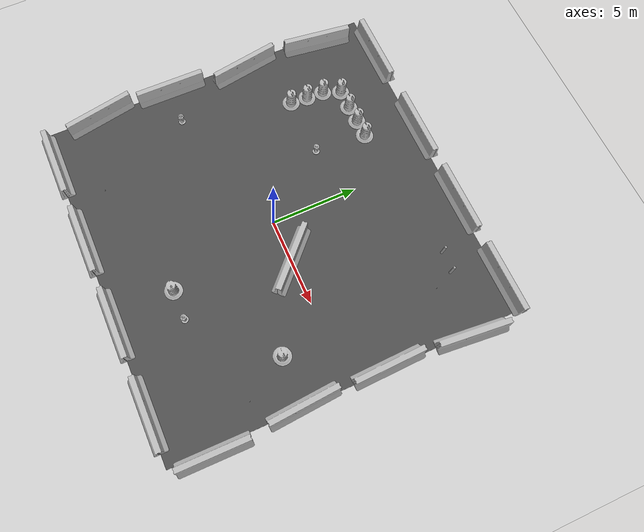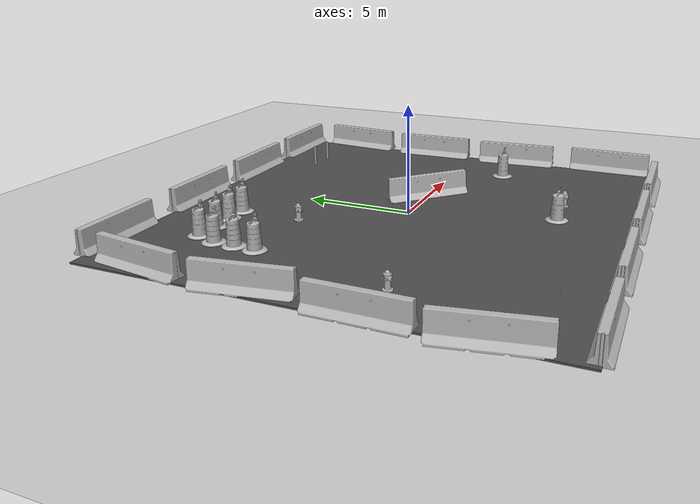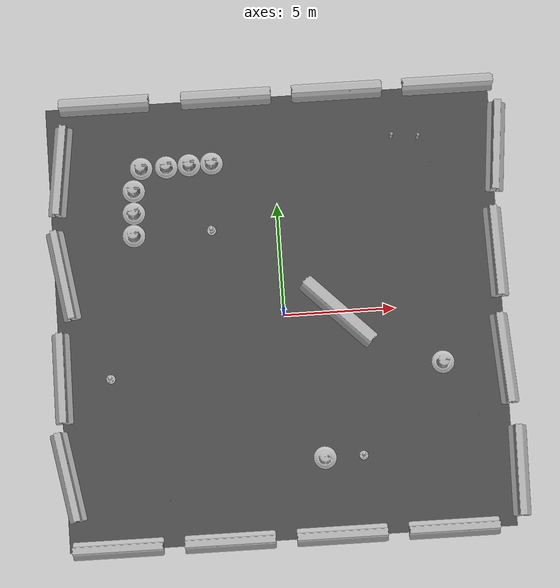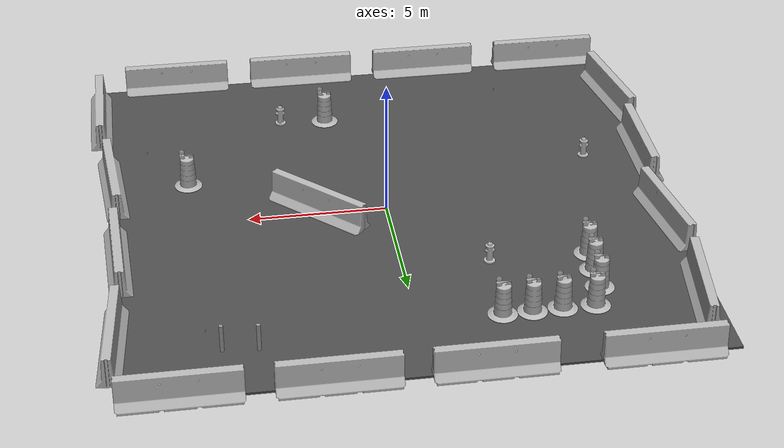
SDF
<sdf version="1.6">
 <world name="default">
  <light name="sun" type="directional">
   <pose>0 0 10 0 -0 0</pose>
   <diffuse>0.8 0.8 0.8 1</diffuse>
   <specular>0.2 0.2 0.2 1</specular>
   <attenuation>
    <range>1000</range>
    <constant>0.9</constant>
    <linear>0.01</linear>
    <quadratic>0.001</quadratic>
   </attenuation>
   <direction>-0.5 0.1 -0.9</direction>
  </light>
  <model name="ground_plane">
   <static>1</static>
   <link name="link">
    <collision name="collision">
     <geometry><plane><normal>0 0 1</normal><size>100 100</size></plane></geometry>
     <surface><friction><ode><mu>100</mu><mu2>50</mu2></ode></friction></surface>
    </collision>
    <visual name="visual">
     <cast_shadows>0</cast_shadows>
     <geometry><plane><normal>0 0 1</normal><size>100 100</size></plane></geometry>
     <material>
      <script><uri>file://media/materials/scripts/gazebo.material</uri><name>Gazebo/Grey</name></script>
     </material>
    </visual>
    <velocity_decay><linear>0</linear><angular>0</angular></velocity_decay>
   </link>
  </model>
  <physics name="default_physics" default="0" type="ode">
   <max_step_size>0.01</max_step_size>
   <real_time_factor>1</real_time_factor>
   <real_time_update_rate>100</real_time_update_rate>
  </physics>
  <scene><ambient>0.4 0.4 0.4 1</ambient><background>0.7 0.7 0.7 1</background><shadows>1</shadows></scene>
  <model name="jersey_barrier">
   <static>1</static>
   <link name="link">
    <visual name="visual">
     <geometry>
      <mesh><uri>model://jersey_barrier/meshes/jersey_barrier.dae</uri><scale>1 1 1</scale></mesh>
     </geometry>
    </visual>
    <collision name="upright">
     <pose>0 0 0.5715 0 -0 0</pose>
     <geometry><box><size>4.06542 0.3063 1.143</size></box></geometry>
    </collision>
    <collision name="base">
     <pose>0 0 0.032258 0 -0 0</pose>
     <geometry><box><size>4.06542 0.8107 0.064516</size></box></geometry>
    </collision>
    <collision name="base2">
     <pose>0 0 0.1 0 -0 0</pose>
     <geometry><box><size>4.06542 0.65 0.1</size></box></geometry>
    </collision>
    <collision name="base3">
     <pose>0 0 0.2 0 -0 0</pose>
     <geometry><box><size>4.06542 0.5 0.1</size></box></geometry>
    </collision>
    <collision name="left-angle">
     <pose>0 -0.224 0.2401 0.9 -0 0</pose>
     <geometry><box><size>4.06542 0.5 0.064516</size></box></geometry>
    </collision>
    <collision name="right-angle">
     <pose>0 0.224 0.2401 -0.9 0 0</pose>
     <geometry><box><size>4.06542 0.5 0.064516</size></box></geometry>
    </collision>
    <velocity_decay><linear>0</linear><angular>0</angular></velocity_decay>
   </link>
   <pose>-8 -10 0 0 -0 0</pose>
  </model>
  <model name="jersey_barrier_0">
   <static>1</static>
   <link name="link">
    <visual name="visual">
     <geometry>
      <mesh><uri>model://jersey_barrier/meshes/jersey_barrier.dae</uri><scale>1 1 1</scale></mesh>
     </geometry>
    </visual>
    <collision name="upright">
     <pose>0 0 0.5715 0 -0 0</pose>
     <geometry><box><size>4.06542 0.3063 1.143</size></box></geometry>
    </collision>
    <collision name="base">
     <pose>0 0 0.032258 0 -0 0</pose>
     <geometry><box><size>4.06542 0.8107 0.064516</size></box></geometry>
    </collision>
    <collision name="base2">
     <pose>0 0 0.1 0 -0 0</pose>
     <geometry><box><size>4.06542 0.65 0.1</size></box></geometry>
    </collision>
    <collision name="base3">
     <pose>0 0 0.2 0 -0 0</pose>
     <geometry><box><size>4.06542 0.5 0.1</size></box></geometry>
    </collision>
    <collision name="left-angle">
     <pose>0 -0.224 0.2401 0.9 -0 0</pose>
     <geometry><box><size>4.06542 0.5 0.064516</size></box></geometry>
    </collision>
    <collision name="right-angle">
     <pose>0 0.224 0.2401 -0.9 0 0</pose>
     <geometry><box><size>4.06542 0.5 0.064516</size></box></geometry>
    </collision>
    <velocity_decay><linear>0</linear><angular>0</angular></velocity_decay>
   </link>
   <pose>-3 -10 0 0 -0 0</pose>
  </model>
  <model name="jersey_barrier_1">
   <static>1</static>
   <link name="link">
    <visual name="visual">
     <geometry>
      <mesh><uri>model://jersey_barrier/meshes/jersey_barrier.dae</uri><scale>1 1 1</scale></mesh>
     </geometry>
    </visual>
    <collision name="upright">
     <pose>0 0 0.5715 0 -0 0</pose>
     <geometry><box><size>4.06542 0.3063 1.143</size></box></geometry>
    </collision>
    <collision name="base">
     <pose>0 0 0.032258 0 -0 0</pose>
     <geometry><box><size>4.06542 0.8107 0.064516</size></box></geometry>
    </collision>
    <collision name="base2">
     <pose>0 0 0.1 0 -0 0</pose>
     <geometry><box><size>4.06542 0.65 0.1</size></box></geometry>
    </collision>
    <collision name="base3">
     <pose>0 0 0.2 0 -0 0</pose>
     <geometry><box><size>4.06542 0.5 0.1</size></box></geometry>
    </collision>
    <collision name="left-angle">
     <pose>0 -0.224 0.2401 0.9 -0 0</pose>
     <geometry><box><size>4.06542 0.5 0.064516</size></box></geometry>
    </collision>
    <collision name="right-angle">
     <pose>0 0.224 0.2401 -0.9 0 0</pose>
     <geometry><box><size>4.06542 0.5 0.064516</size></box></geometry>
    </collision>
    <velocity_decay><linear>0</linear><angular>0</angular></velocity_decay>
   </link>
   <pose>2 -10 0 0 -0 0</pose>
  </model>
  <model name="jersey_barrier_2">
   <static>1</static>
   <link name="link">
    <visual name="visual">
     <geometry>
      <mesh><uri>model://jersey_barrier/meshes/jersey_barrier.dae</uri><scale>1 1 1</scale></mesh>
     </geometry>
    </visual>
    <collision name="upright">
     <pose>0 0 0.5715 0 -0 0</pose>
     <geometry><box><size>4.06542 0.3063 1.143</size></box></geometry>
    </collision>
    <collision name="base">
     <pose>0 0 0.032258 0 -0 0</pose>
     <geometry><box><size>4.06542 0.8107 0.064516</size></box></geometry>
    </collision>
    <collision name="base2">
     <pose>0 0 0.1 0 -0 0</pose>
     <geometry><box><size>4.06542 0.65 0.1</size></box></geometry>
    </collision>
    <collision name="base3">
     <pose>0 0 0.2 0 -0 0</pose>
     <geometry><box><size>4.06542 0.5 0.1</size></box></geometry>
    </collision>
    <collision name="left-angle">
     <pose>0 -0.224 0.2401 0.9 -0 0</pose>
     <geometry><box><size>4.06542 0.5 0.064516</size></box></geometry>
    </collision>
    <collision name="right-angle">
     <pose>0 0.224 0.2401 -0.9 0 0</pose>
     <geometry><box><size>4.06542 0.5 0.064516</size></box></geometry>
    </collision>
    <velocity_decay><linear>0</linear><angular>0</angular></velocity_decay>
   </link>
   <pose>7 -10 0 0 -0 0</pose>
  </model>
  <model name="jersey_barrier_3">
   <static>1</static>
   <link name="link">
    <visual name="visual">
     <geometry>
      <mesh><uri>model://jersey_barrier/meshes/jersey_barrier.dae</uri><scale>1 1 1</scale></mesh>
     </geometry>
    </visual>
    <collision name="upright">
     <pose>0 0 0.5715 0 -0 0</pose>
     <geometry><box><size>4.06542 0.3063 1.143</size></box></geometry>
    </collision>
    <collision name="base">
     <pose>0 0 0.032258 0 -0 0</pose>
     <geometry><box><size>4.06542 0.8107 0.064516</size></box></geometry>
    </collision>
    <collision name="base2">
     <pose>0 0 0.1 0 -0 0</pose>
     <geometry><box><size>4.06542 0.65 0.1</size></box></geometry>
    </collision>
    <collision name="base3">
     <pose>0 0 0.2 0 -0 0</pose>
     <geometry><box><size>4.06542 0.5 0.1</size></box></geometry>
    </collision>
    <collision name="left-angle">
     <pose>0 -0.224 0.2401 0.9 -0 0</pose>
     <geometry><box><size>4.06542 0.5 0.064516</size></box></geometry>
    </collision>
    <collision name="right-angle">
     <pose>0 0.224 0.2401 -0.9 0 0</pose>
     <geometry><box><size>4.06542 0.5 0.064516</size></box></geometry>
    </collision>
    <velocity_decay><linear>0</linear><angular>0</angular></velocity_decay>
   </link>
   <pose>-7.50675 10 0 0 -0 0</pose>
  </model>
  <model name="jersey_barrier_4">
   <static>1</static>
   <link name="link">
    <visual name="visual">
     <geometry>
      <mesh><uri>model://jersey_barrier/meshes/jersey_barrier.dae</uri><scale>1 1 1</scale></mesh>
     </geometry>
    </visual>
    <collision name="upright">
     <pose>0 0 0.5715 0 -0 0</pose>
     <geometry><box><size>4.06542 0.3063 1.143</size></box></geometry>
    </collision>
    <collision name="base">
     <pose>0 0 0.032258 0 -0 0</pose>
     <geometry><box><size>4.06542 0.8107 0.064516</size></box></geometry>
    </collision>
    <collision name="base2">
     <pose>0 0 0.1 0 -0 0</pose>
     <geometry><box><size>4.06542 0.65 0.1</size></box></geometry>
    </collision>
    <collision name="base3">
     <pose>0 0 0.2 0 -0 0</pose>
     <geometry><box><size>4.06542 0.5 0.1</size></box></geometry>
    </collision>
    <collision name="left-angle">
     <pose>0 -0.224 0.2401 0.9 -0 0</pose>
     <geometry><box><size>4.06542 0.5 0.064516</size></box></geometry>
    </collision>
    <collision name="right-angle">
     <pose>0 0.224 0.2401 -0.9 0 0</pose>
     <geometry><box><size>4.06542 0.5 0.064516</size></box></geometry>
    </collision>
    <velocity_decay><linear>0</linear><angular>0</angular></velocity_decay>
   </link>
   <pose>-2 10 0 0 -0 0</pose>
  </model>
  <model name="jersey_barrier_5">
   <static>1</static>
   <link name="link">
    <visual name="visual">
     <geometry>
      <mesh><uri>model://jersey_barrier/meshes/jersey_barrier.dae</uri><scale>1 1 1</scale></mesh>
     </geometry>
    </visual>
    <collision name="upright">
     <pose>0 0 0.5715 0 -0 0</pose>
     <geometry><box><size>4.06542 0.3063 1.143</size></box></geometry>
    </collision>
    <collision name="base">
     <pose>0 0 0.032258 0 -0 0</pose>
     <geometry><box><size>4.06542 0.8107 0.064516</size></box></geometry>
    </collision>
    <collision name="base2">
     <pose>0 0 0.1 0 -0 0</pose>
     <geometry><box><size>4.06542 0.65 0.1</size></box></geometry>
    </collision>
    <collision name="base3">
     <pose>0 0 0.2 0 -0 0</pose>
     <geometry><box><size>4.06542 0.5 0.1</size></box></geometry>
    </collision>
    <collision name="left-angle">
     <pose>0 -0.224 0.2401 0.9 -0 0</pose>
     <geometry><box><size>4.06542 0.5 0.064516</size></box></geometry>
    </collision>
    <collision name="right-angle">
     <pose>0 0.224 0.2401 -0.9 0 0</pose>
     <geometry><box><size>4.06542 0.5 0.064516</size></box></geometry>
    </collision>
    <velocity_decay><linear>0</linear><angular>0</angular></velocity_decay>
   </link>
   <pose>3 10 0 0 -0 0</pose>
  </model>
  <model name="jersey_barrier_6">
   <static>1</static>
   <link name="link">
    <visual name="visual">
     <geometry>
      <mesh><uri>model://jersey_barrier/meshes/jersey_barrier.dae</uri><scale>1 1 1</scale></mesh>
     </geometry>
    </visual>
    <collision name="upright">
     <pose>0 0 0.5715 0 -0 0</pose>
     <geometry><box><size>4.06542 0.3063 1.143</size></box></geometry>
    </collision>
    <collision name="base">
     <pose>0 0 0.032258 0 -0 0</pose>
     <geometry><box><size>4.06542 0.8107 0.064516</size></box></geometry>
    </collision>
    <collision name="base2">
     <pose>0 0 0.1 0 -0 0</pose>
     <geometry><box><size>4.06542 0.65 0.1</size></box></geometry>
    </collision>
    <collision name="base3">
     <pose>0 0 0.2 0 -0 0</pose>
     <geometry><box><size>4.06542 0.5 0.1</size></box></geometry>
    </collision>
    <collision name="left-angle">
     <pose>0 -0.224 0.2401 0.9 -0 0</pose>
     <geometry><box><size>4.06542 0.5 0.064516</size></box></geometry>
    </collision>
    <collision name="right-angle">
     <pose>0 0.224 0.2401 -0.9 0 0</pose>
     <geometry><box><size>4.06542 0.5 0.064516</size></box></geometry>
    </collision>
    <velocity_decay><linear>0</linear><angular>0</angular></velocity_decay>
   </link>
   <pose>8 10 0 0 -0 0</pose>
  </model>
  <model name="jersey_barrier_7">
   <static>1</static>
   <link name="link">
    <visual name="visual">
     <geometry>
      <mesh><uri>model://jersey_barrier/meshes/jersey_barrier.dae</uri><scale>1 1 1</scale></mesh>
     </geometry>
    </visual>
    <collision name="upright">
     <pose>0 0 0.5715 0 -0 0</pose>
     <geometry><box><size>4.06542 0.3063 1.143</size></box></geometry>
    </collision>
    <collision name="base">
     <pose>0 0 0.032258 0 -0 0</pose>
     <geometry><box><size>4.06542 0.8107 0.064516</size></box></geometry>
    </collision>
    <collision name="base2">
     <pose>0 0 0.1 0 -0 0</pose>
     <geometry><box><size>4.06542 0.65 0.1</size></box></geometry>
    </collision>
    <collision name="base3">
     <pose>0 0 0.2 0 -0 0</pose>
     <geometry><box><size>4.06542 0.5 0.1</size></box></geometry>
    </collision>
    <collision name="left-angle">
     <pose>0 -0.224 0.2401 0.9 -0 0</pose>
     <geometry><box><size>4.06542 0.5 0.064516</size></box></geometry>
    </collision>
    <collision name="right-angle">
     <pose>0 0.224 0.2401 -0.9 0 0</pose>
     <geometry><box><size>4.06542 0.5 0.064516</size></box></geometry>
    </collision>
    <velocity_decay><linear>0</linear><angular>0</angular></velocity_decay>
   </link>
   <pose>9.74902 -2.57759 0 0 -0 1.64</pose>
  </model>
  <model name="jersey_barrier_8">
   <static>1</static>
   <link name="link">
    <visual name="visual">
     <geometry>
      <mesh><uri>model://jersey_barrier/meshes/jersey_barrier.dae</uri><scale>1 1 1</scale></mesh>
     </geometry>
    </visual>
    <collision name="upright">
     <pose>0 0 0.5715 0 -0 0</pose>
     <geometry><box><size>4.06542 0.3063 1.143</size></box></geometry>
    </collision>
    <collision name="base">
     <pose>0 0 0.032258 0 -0 0</pose>
     <geometry><box><size>4.06542 0.8107 0.064516</size></box></geometry>
    </collision>
    <collision name="base2">
     <pose>0 0 0.1 0 -0 0</pose>
     <geometry><box><size>4.06542 0.65 0.1</size></box></geometry>
    </collision>
    <collision name="base3">
     <pose>0 0 0.2 0 -0 0</pose>
     <geometry><box><size>4.06542 0.5 0.1</size></box></geometry>
    </collision>
    <collision name="left-angle">
     <pose>0 -0.224 0.2401 0.9 -0 0</pose>
     <geometry><box><size>4.06542 0.5 0.064516</size></box></geometry>
    </collision>
    <collision name="right-angle">
     <pose>0 0.224 0.2401 -0.9 0 0</pose>
     <geometry><box><size>4.06542 0.5 0.064516</size></box></geometry>
    </collision>
    <velocity_decay><linear>0</linear><angular>0</angular></velocity_decay>
   </link>
   <pose>9.70141 2.24369 0 0 -0 1.6</pose>
  </model>
  <model name="jersey_barrier_9">
   <static>1</static>
   <link name="link">
    <visual name="visual">
     <geometry>
      <mesh><uri>model://jersey_barrier/meshes/jersey_barrier.dae</uri><scale>1 1 1</scale></mesh>
     </geometry>
    </visual>
    <collision name="upright">
     <pose>0 0 0.5715 0 -0 0</pose>
     <geometry><box><size>4.06542 0.3063 1.143</size></box></geometry>
    </collision>
    <collision name="base">
     <pose>0 0 0.032258 0 -0 0</pose>
     <geometry><box><size>4.06542 0.8107 0.064516</size></box></geometry>
    </collision>
    <collision name="base2">
     <pose>0 0 0.1 0 -0 0</pose>
     <geometry><box><size>4.06542 0.65 0.1</size></box></geometry>
    </collision>
    <collision name="base3">
     <pose>0 0 0.2 0 -0 0</pose>
     <geometry><box><size>4.06542 0.5 0.1</size></box></geometry>
    </collision>
    <collision name="left-angle">
     <pose>0 -0.224 0.2401 0.9 -0 0</pose>
     <geometry><box><size>4.06542 0.5 0.064516</size></box></geometry>
    </collision>
    <collision name="right-angle">
     <pose>0 0.224 0.2401 -0.9 0 0</pose>
     <geometry><box><size>4.06542 0.5 0.064516</size></box></geometry>
    </collision>
    <velocity_decay><linear>0</linear><angular>0</angular></velocity_decay>
   </link>
   <pose>-10.0607 -6.69856 0 0 0 -1.4</pose>
  </model>
  <model name="jersey_barrier_10">
   <static>1</static>
   <link name="link">
    <visual name="visual">
     <geometry>
      <mesh><uri>model://jersey_barrier/meshes/jersey_barrier.dae</uri><scale>1 1 1</scale></mesh>
     </geometry>
    </visual>
    <collision name="upright">
     <pose>0 0 0.5715 0 -0 0</pose>
     <geometry><box><size>4.06542 0.3063 1.143</size></box></geometry>
    </collision>
    <collision name="base">
     <pose>0 0 0.032258 0 -0 0</pose>
     <geometry><box><size>4.06542 0.8107 0.064516</size></box></geometry>
    </collision>
    <collision name="base2">
     <pose>0 0 0.1 0 -0 0</pose>
     <geometry><box><size>4.06542 0.65 0.1</size></box></geometry>
    </collision>
    <collision name="base3">
     <pose>0 0 0.2 0 -0 0</pose>
     <geometry><box><size>4.06542 0.5 0.1</size></box></geometry>
    </collision>
    <collision name="left-angle">
     <pose>0 -0.224 0.2401 0.9 -0 0</pose>
     <geometry><box><size>4.06542 0.5 0.064516</size></box></geometry>
    </collision>
    <collision name="right-angle">
     <pose>0 0.224 0.2401 -0.9 0 0</pose>
     <geometry><box><size>4.06542 0.5 0.064516</size></box></geometry>
    </collision>
    <velocity_decay><linear>0</linear><angular>0</angular></velocity_decay>
   </link>
   <pose>-10.0774 -2.27159 0 0 -0 1.56</pose>
  </model>
  <model name="jersey_barrier_11">
   <static>1</static>
   <link name="link">
    <visual name="visual">
     <geometry>
      <mesh><uri>model://jersey_barrier/meshes/jersey_barrier.dae</uri><scale>1 1 1</scale></mesh>
     </geometry>
    </visual>
    <collision name="upright">
     <pose>0 0 0.5715 0 -0 0</pose>
     <geometry><box><size>4.06542 0.3063 1.143</size></box></geometry>
    </collision>
    <collision name="base">
     <pose>0 0 0.032258 0 -0 0</pose>
     <geometry><box><size>4.06542 0.8107 0.064516</size></box></geometry>
    </collision>
    <collision name="base2">
     <pose>0 0 0.1 0 -0 0</pose>
     <geometry><box><size>4.06542 0.65 0.1</size></box></geometry>
    </collision>
    <collision name="base3">
     <pose>0 0 0.2 0 -0 0</pose>
     <geometry><box><size>4.06542 0.5 0.1</size></box></geometry>
    </collision>
    <collision name="left-angle">
     <pose>0 -0.224 0.2401 0.9 -0 0</pose>
     <geometry><box><size>4.06542 0.5 0.064516</size></box></geometry>
    </collision>
    <collision name="right-angle">
     <pose>0 0.224 0.2401 -0.9 0 0</pose>
     <geometry><box><size>4.06542 0.5 0.064516</size></box></geometry>
    </collision>
    <velocity_decay><linear>0</linear><angular>0</angular></velocity_decay>
   </link>
   <pose>-9.77013 2.34791 0 0 -0 1.72</pose>
  </model>
  <model name="jersey_barrier_12">
   <static>1</static>
   <link name="link">
    <visual name="visual">
     <geometry>
      <mesh><uri>model://jersey_barrier/meshes/jersey_barrier.dae</uri><scale>1 1 1</scale></mesh>
     </geometry>
    </visual>
    <collision name="upright">
     <pose>0 0 0.5715 0 -0 0</pose>
     <geometry><box><size>4.06542 0.3063 1.143</size></box></geometry>
    </collision>
    <collision name="base">
     <pose>0 0 0.032258 0 -0 0</pose>
     <geometry><box><size>4.06542 0.8107 0.064516</size></box></geometry>
    </collision>
    <collision name="base2">
     <pose>0 0 0.1 0 -0 0</pose>
     <geometry><box><size>4.06542 0.65 0.1</size></box></geometry>
    </collision>
    <collision name="base3">
     <pose>0 0 0.2 0 -0 0</pose>
     <geometry><box><size>4.06542 0.5 0.1</size></box></geometry>
    </collision>
    <collision name="left-angle">
     <pose>0 -0.224 0.2401 0.9 -0 0</pose>
     <geometry><box><size>4.06542 0.5 0.064516</size></box></geometry>
    </collision>
    <collision name="right-angle">
     <pose>0 0.224 0.2401 -0.9 0 0</pose>
     <geometry><box><size>4.06542 0.5 0.064516</size></box></geometry>
    </collision>
    <velocity_decay><linear>0</linear><angular>0</angular></velocity_decay>
   </link>
   <pose>10.0879 -7.62159 0 0 -0 1.56</pose>
  </model>
  <model name="jersey_barrier_13">
   <static>1</static>
   <link name="link">
    <visual name="visual">
     <geometry>
      <mesh><uri>model://jersey_barrier/meshes/jersey_barrier.dae</uri><scale>1 1 1</scale></mesh>
     </geometry>
    </visual>
    <collision name="upright">
     <pose>0 0 0.5715 0 -0 0</pose>
     <geometry><box><size>4.06542 0.3063 1.143</size></box></geometry>
    </collision>
    <collision name="base">
     <pose>0 0 0.032258 0 -0 0</pose>
     <geometry><box><size>4.06542 0.8107 0.064516</size></box></geometry>
    </collision>
    <collision name="base2">
     <pose>0 0 0.1 0 -0 0</pose>
     <geometry><box><size>4.06542 0.65 0.1</size></box></geometry>
    </collision>
    <collision name="base3">
     <pose>0 0 0.2 0 -0 0</pose>
     <geometry><box><size>4.06542 0.5 0.1</size></box></geometry>
    </collision>
    <collision name="left-angle">
     <pose>0 -0.224 0.2401 0.9 -0 0</pose>
     <geometry><box><size>4.06542 0.5 0.064516</size></box></geometry>
    </collision>
    <collision name="right-angle">
     <pose>0 0.224 0.2401 -0.9 0 0</pose>
     <geometry><box><size>4.06542 0.5 0.064516</size></box></geometry>
    </collision>
    <velocity_decay><linear>0</linear><angular>0</angular></velocity_decay>
   </link>
   <pose>10 7 0 0 -0 1.48</pose>
  </model>
  <model name="jersey_barrier_14">
   <static>1</static>
   <link name="link">
    <visual name="visual">
     <geometry>
      <mesh><uri>model://jersey_barrier/meshes/jersey_barrier.dae</uri><scale>1 1 1</scale></mesh>
     </geometry>
    </visual>
    <collision name="upright">
     <pose>0 0 0.5715 0 -0 0</pose>
     <geometry><box><size>4.06542 0.3063 1.143</size></box></geometry>
    </collision>
    <collision name="base">
     <pose>0 0 0.032258 0 -0 0</pose>
     <geometry><box><size>4.06542 0.8107 0.064516</size></box></geometry>
    </collision>
    <collision name="base2">
     <pose>0 0 0.1 0 -0 0</pose>
     <geometry><box><size>4.06542 0.65 0.1</size></box></geometry>
    </collision>
    <collision name="base3">
     <pose>0 0 0.2 0 -0 0</pose>
     <geometry><box><size>4.06542 0.5 0.1</size></box></geometry>
    </collision>
    <collision name="left-angle">
     <pose>0 -0.224 0.2401 0.9 -0 0</pose>
     <geometry><box><size>4.06542 0.5 0.064516</size></box></geometry>
    </collision>
    <collision name="right-angle">
     <pose>0 0.224 0.2401 -0.9 0 0</pose>
     <geometry><box><size>4.06542 0.5 0.064516</size></box></geometry>
    </collision>
    <velocity_decay><linear>0</linear><angular>0</angular></velocity_decay>
   </link>
   <pose>-9.64482 7.05946 0 0 -0 1.44</pose>
  </model>
  <model name="fire_hydrant">
   <static>1</static>
   <link name="link">
    <collision name="collision">
     <geometry><mesh><uri>model://fire_hydrant/meshes/fire_hydrant.dae</uri><scale>1 1 1</scale></mesh></geometry>
    </collision>
    <visual name="visual">
     <geometry><mesh><uri>model://fire_hydrant/meshes/fire_hydrant.dae</uri><scale>1 1 1</scale></mesh></geometry>
    </visual>
    <velocity_decay><linear>0</linear><angular>0</angular></velocity_decay>
   </link>
   <pose>3.18024 -6.51118 0 0 -0 0</pose>
  </model>
  <model name="fire_hydrant_0">
   <static>1</static>
   <link name="link">
    <collision name="collision">
     <geometry><mesh><uri>model://fire_hydrant/meshes/fire_hydrant.dae</uri><scale>1 1 1</scale></mesh></geometry>
    </collision>
    <visual name="visual">
     <geometry><mesh><uri>model://fire_hydrant/meshes/fire_hydrant.dae</uri><scale>1 1 1</scale></mesh></geometry>
    </visual>
    <velocity_decay><linear>0</linear><angular>0</angular></velocity_decay>
   </link>
   <pose>-3 4 0 0 -0 0</pose>
  </model>
  <model name="fire_hydrant_1">
   <static>1</static>
   <link name="link">
    <collision name="collision">
     <geometry><mesh><uri>model://fire_hydrant/meshes/fire_hydrant.dae</uri><scale>1 1 1</scale></mesh></geometry>
    </collision>
    <visual name="visual">
     <geometry><mesh><uri>model://fire_hydrant/meshes/fire_hydrant.dae</uri><scale>1 1 1</scale></mesh></geometry>
    </visual>
    <velocity_decay><linear>0</linear><angular>0</angular></velocity_decay>
   </link>
   <pose>-7.90686 -2.41363 0 0 -0 0</pose>
  </model>
  <model name="jersey_barrier_15">
   <static>1</static>
   <link name="link">
    <visual name="visual">
     <geometry>
      <mesh><uri>model://jersey_barrier/meshes/jersey_barrier.dae</uri><scale>1 1 1</scale></mesh>
     </geometry>
    </visual>
    <collision name="upright">
     <pose>0 0 0.5715 0 -0 0</pose>
     <geometry><box><size>4.06542 0.3063 1.143</size></box></geometry>
    </collision>
    <collision name="base">
     <pose>0 0 0.032258 0 -0 0</pose>
     <geometry><box><size>4.06542 0.8107 0.064516</size></box></geometry>
    </collision>
    <collision name="base2">
     <pose>0 0 0.1 0 -0 0</pose>
     <geometry><box><size>4.06542 0.65 0.1</size></box></geometry>
    </collision>
    <collision name="base3">
     <pose>0 0 0.2 0 -0 0</pose>
     <geometry><box><size>4.06542 0.5 0.1</size></box></geometry>
    </collision>
    <collision name="left-angle">
     <pose>0 -0.224 0.2401 0.9 -0 0</pose>
     <geometry><box><size>4.06542 0.5 0.064516</size></box></geometry>
    </collision>
    <collision name="right-angle">
     <pose>0 0.224 0.2401 -0.9 0 0</pose>
     <geometry><box><size>4.06542 0.5 0.064516</size></box></geometry>
    </collision>
    <velocity_decay><linear>0</linear><angular>0</angular></velocity_decay>
   </link>
   <pose>2.45495 0 0 0 -0 2.36</pose>
  </model>
  <model name="Construction Cone">
   <link name="link">
    <collision name="collision">
     <geometry>
      <mesh><scale>1 1 1</scale><uri>model://construction_cone/meshes/construction_cone.dae</uri></mesh>
     </geometry>
    </collision>
    <visual name="visual">
     <geometry>
      <mesh><scale>1 1 1</scale><uri>model://construction_cone/meshes/construction_cone.dae</uri></mesh>
     </geometry>
    </visual>
    <velocity_decay><linear>0</linear><angular>0</angular></velocity_decay>
    <inertial>
     <inertia><ixx>1</ixx><ixy>0</ixy><ixz>0</ixz><iyy>1</iyy><iyz>0</iyz><izz>1</izz></inertia>
     <mass>1</mass>
    </inertial>
   </link>
   <pose>-5.59121 -8 0.049102 3e-06 -1e-05 2e-06</pose>
   <static>0</static>
  </model>
  <model name="Construction Barrel">
   <link name="link">
    <inertial>
     <pose>0 0 0.4 0 -0 0</pose>
     <mass>500</mass>
     <inertia><ixx>51.2096</ixx><iyy>51.2096</iyy><izz>25</izz><ixy>0</ixy><ixz>0</ixz><iyz>0</iyz></inertia>
    </inertial>
    <collision name="collision">
     <geometry>
      <mesh><uri>model://construction_barrel/meshes/construction_barrel.dae</uri><scale>1 1 1</scale></mesh>
     </geometry>
    </collision>
    <visual name="visual">
     <geometry>
      <mesh><uri>model://construction_barrel/meshes/construction_barrel.dae</uri><scale>1 1 1</scale></mesh>
     </geometry>
    </visual>
    <velocity_decay><linear>0</linear><angular>0</angular></velocity_decay>
   </link>
   <pose>7.00008 -2.5463 0.049896 0.000437 -1.7e-05 0.000325</pose>
   <static>0</static>
  </model>
  <model name="Construction Cone_0">
   <link name="link">
    <collision name="collision">
     <geometry>
      <mesh><scale>1 1 1</scale><uri>model://construction_cone/meshes/construction_cone.dae</uri></mesh>
     </geometry>
    </collision>
    <visual name="visual">
     <geometry>
      <mesh><scale>1 1 1</scale><uri>model://construction_cone/meshes/construction_cone.dae</uri></mesh>
     </geometry>
    </visual>
    <velocity_decay><linear>0</linear><angular>0</angular></velocity_decay>
    <inertial>
     <inertia><ixx>1</ixx><ixy>0</ixy><ixz>0</ixz><iyy>1</iyy><iyz>0</iyz><izz>1</izz></inertia>
     <mass>1</mass>
    </inertial>
   </link>
   <pose>6.99685 6.55732 0.04902 1e-06 0 -0.007011</pose>
   <static>0</static>
  </model>
  <model name="Construction Barrel_0">
   <link name="link">
    <inertial>
     <pose>0 0 0.4 0 -0 0</pose>
     <mass>500</mass>
     <inertia><ixx>51.2096</ixx><iyy>51.2096</iyy><izz>25</izz><ixy>0</ixy><ixz>0</ixz><iyz>0</iyz></inertia>
    </inertial>
    <collision name="collision">
     <geometry>
      <mesh><uri>model://construction_barrel/meshes/construction_barrel.dae</uri><scale>1 1 1</scale></mesh>
     </geometry>
    </collision>
    <visual name="visual">
     <geometry>
      <mesh><uri>model://construction_barrel/meshes/construction_barrel.dae</uri><scale>1 1 1</scale></mesh>
     </geometry>
    </visual>
    <velocity_decay><linear>0</linear><angular>0</angular></velocity_decay>
   </link>
   <pose>1.4518 -6.51123 0.049912 -0.000173 -0.00035 -3.8e-05</pose>
   <static>0</static>
  </model>
  <model name="asphalt_plane">
   <static>1</static>
   <link name="link">
    <collision name="collision"><geometry><box><size>20 20 0.1</size></box></geometry></collision>
    <visual name="visual">
     <cast_shadows>0</cast_shadows>
     <geometry><box><size>20 20 0.1</size></box></geometry>
     <material>
      <script>
       <uri>model://asphalt_plane/materials/scripts</uri>
       <uri>model://asphalt_plane/materials/textures</uri>
       <name>vrc/asphalt</name>
      </script>
     </material>
    </visual>
    <velocity_decay><linear>0</linear><angular>0</angular></velocity_decay>
   </link>
   <pose>-0.173321 -0.067048 0 0 -0 0</pose>
  </model>
  <model name="Construction Barrel_1">
   <link name="link">
    <inertial>
     <pose>0 0 0.4 0 -0 0</pose>
     <mass>500</mass>
     <inertia><ixx>51.2096</ixx><iyy>51.2096</iyy><izz>25</izz><ixy>0</ixy><ixz>0</ixz><iyz>0</iyz></inertia>
    </inertial>
    <collision name="collision">
     <geometry>
      <mesh><uri>model://construction_barrel/meshes/construction_barrel.dae</uri><scale>1 1 1</scale></mesh>
     </geometry>
    </collision>
    <visual name="visual">
     <geometry>
      <mesh><uri>model://construction_barrel/meshes/construction_barrel.dae</uri><scale>1 1 1</scale></mesh>
     </geometry>
    </visual>
    <velocity_decay><linear>0</linear><angular>0</angular></velocity_decay>
   </link>
   <pose>-6.50471 3.98273 0.049911 0.000381 7.9e-05 -0.009568</pose>
   <static>0</static>
  </model>
  <model name="Construction Barrel_2">
   <link name="link">
    <inertial>
     <pose>0 0 0.4 0 -0 0</pose>
     <mass>500</mass>
     <inertia><ixx>51.2096</ixx><iyy>51.2096</iyy><izz>25</izz><ixy>0</ixy><ixz>0</ixz><iyz>0</iyz></inertia>
    </inertial>
    <collision name="collision">
     <geometry>
      <mesh><uri>model://construction_barrel/meshes/construction_barrel.dae</uri><scale>1 1 1</scale></mesh>
     </geometry>
    </collision>
    <visual name="visual">
     <geometry>
      <mesh><uri>model://construction_barrel/meshes/construction_barrel.dae</uri><scale>1 1 1</scale></mesh>
     </geometry>
    </visual>
    <velocity_decay><linear>0</linear><angular>0</angular></velocity_decay>
   </link>
   <pose>-6.45062 4.99645 0.049899 -0.000198 -0.00038 0.064922</pose>
   <static>0</static>
  </model>
  <model name="Construction Barrel_3">
   <link name="link">
    <inertial>
     <pose>0 0 0.4 0 -0 0</pose>
     <mass>500</mass>
     <inertia><ixx>51.2096</ixx><iyy>51.2096</iyy><izz>25</izz><ixy>0</ixy><ixz>0</ixz><iyz>0</iyz></inertia>
    </inertial>
    <collision name="collision">
     <geometry>
      <mesh><uri>model://construction_barrel/meshes/construction_barrel.dae</uri><scale>1 1 1</scale></mesh>
     </geometry>
    </collision>
    <visual name="visual">
     <geometry>
      <mesh><uri>model://construction_barrel/meshes/construction_barrel.dae</uri><scale>1 1 1</scale></mesh>
     </geometry>
    </visual>
    <velocity_decay><linear>0</linear><angular>0</angular></velocity_decay>
   </link>
   <pose>-6.4017 6.01117 0.049863 -0.000144 -0.000499 -0.120742</pose>
   <static>0</static>
  </model>
  <model name="Construction Barrel_4">
   <link name="link">
    <inertial>
     <pose>0 0 0.4 0 -0 0</pose>
     <mass>500</mass>
     <inertia><ixx>51.2096</ixx><iyy>51.2096</iyy><izz>25</izz><ixy>0</ixy><ixz>0</ixz><iyz>0</iyz></inertia>
    </inertial>
    <collision name="collision">
     <geometry>
      <mesh><uri>model://construction_barrel/meshes/construction_barrel.dae</uri><scale>1 1 1</scale></mesh>
     </geometry>
    </collision>
    <visual name="visual">
     <geometry>
      <mesh><uri>model://construction_barrel/meshes/construction_barrel.dae</uri><scale>1 1 1</scale></mesh>
     </geometry>
    </visual>
    <velocity_decay><linear>0</linear><angular>0</angular></velocity_decay>
   </link>
   <pose>-6.00624 7.00892 0.049915 0.00037 7.3e-05 -0.049542</pose>
   <static>0</static>
  </model>
  <model name="Construction Barrel_5">
   <link name="link">
    <inertial>
     <pose>0 0 0.4 0 -0 0</pose>
     <mass>500</mass>
     <inertia><ixx>51.2096</ixx><iyy>51.2096</iyy><izz>25</izz><ixy>0</ixy><ixz>0</ixz><iyz>0</iyz></inertia>
    </inertial>
    <collision name="collision">
     <geometry>
      <mesh><uri>model://construction_barrel/meshes/construction_barrel.dae</uri><scale>1 1 1</scale></mesh>
     </geometry>
    </collision>
    <visual name="visual">
     <geometry>
      <mesh><uri>model://construction_barrel/meshes/construction_barrel.dae</uri><scale>1 1 1</scale></mesh>
     </geometry>
    </visual>
    <velocity_decay><linear>0</linear><angular>0</angular></velocity_decay>
   </link>
   <pose>-4.87561 7.00819 0.049934 -0.00013 -0.00029 0.146113</pose>
   <static>0</static>
  </model>
  <model name="Construction Barrel_6">
   <link name="link">
    <inertial>
     <pose>0 0 0.4 0 -0 0</pose>
     <mass>500</mass>
     <inertia><ixx>51.2096</ixx><iyy>51.2096</iyy><izz>25</izz><ixy>0</ixy><ixz>0</ixz><iyz>0</iyz></inertia>
    </inertial>
    <collision name="collision">
     <geometry>
      <mesh><uri>model://construction_barrel/meshes/construction_barrel.dae</uri><scale>1 1 1</scale></mesh>
     </geometry>
    </collision>
    <visual name="visual">
     <geometry>
      <mesh><uri>model://construction_barrel/meshes/construction_barrel.dae</uri><scale>1 1 1</scale></mesh>
     </geometry>
    </visual>
    <velocity_decay><linear>0</linear><angular>0</angular></velocity_decay>
   </link>
   <pose>-3.84221 7.04145 0.049954 0.000245 8.7e-05 0.026952</pose>
   <static>0</static>
  </model>
  <model name="Construction Barrel_7">
   <link name="link">
    <inertial>
     <pose>0 0 0.4 0 -0 0</pose>
     <mass>500</mass>
     <inertia><ixx>51.2096</ixx><iyy>51.2096</iyy><izz>25</izz><ixy>0</ixy><ixz>0</ixz><iyz>0</iyz></inertia>
    </inertial>
    <collision name="collision">
     <geometry>
      <mesh><uri>model://construction_barrel/meshes/construction_barrel.dae</uri><scale>1 1 1</scale></mesh>
     </geometry>
    </collision>
    <visual name="visual">
     <geometry>
      <mesh><uri>model://construction_barrel/meshes/construction_barrel.dae</uri><scale>1 1 1</scale></mesh>
     </geometry>
    </visual>
    <velocity_decay><linear>0</linear><angular>0</angular></velocity_decay>
   </link>
   <pose>-2.82561 7.05324 0.049887 -0.000222 -0.000403 0.055466</pose>
   <static>0</static>
  </model>
  <model name="Construction Cone_1">
   <link name="link">
    <collision name="collision">
     <geometry>
      <mesh><scale>1 1 1</scale><uri>model://construction_cone/meshes/construction_cone.dae</uri></mesh>
     </geometry>
    </collision>
    <visual name="visual">
     <geometry>
      <mesh><scale>1 1 1</scale><uri>model://construction_cone/meshes/construction_cone.dae</uri></mesh>
     </geometry>
    </visual>
    <velocity_decay><linear>0</linear><angular>0</angular></velocity_decay>
    <inertial>
     <inertia><ixx>1</ixx><ixy>0</ixy><ixz>0</ixz><iyy>1</iyy><iyz>0</iyz><izz>1</izz></inertia>
     <mass>1</mass>
    </inertial>
   </link>
   <pose>8.42887 -5 0.049102 3e-06 -1e-05 2e-06</pose>
   <static>0</static>
  </model>
  <gravity>0 0 -9.8</gravity>
  <magnetic_field>6e-06 2.3e-05 -4.2e-05</magnetic_field>
  <atmosphere type="adiabatic"/>
  <spherical_coordinates>
   <surface_model>EARTH_WGS84</surface_model>
   <latitude_deg>0</latitude_deg>
   <longitude_deg>0</longitude_deg>
   <elevation>0</elevation>
   <heading_deg>0</heading_deg>
  </spherical_coordinates>
  <model name="unit_cylinder">
   <pose>6.51645 7.64755 0.549889 -0.008458 0.007331 -0.002172</pose>
   <link name="link">
    <inertial>
     <mass>1</mass>
     <inertia><ixx>0.145833</ixx><ixy>0</ixy><ixz>0</ixz><iyy>0.145833</iyy><iyz>0</iyz><izz>0.125</izz></inertia>
    </inertial>
    <collision name="collision">
     <geometry><cylinder><radius>0.0713975</radius><length>1</length></cylinder></geometry>
    </collision>
    <visual name="visual">
     <geometry><cylinder><radius>0.0713975</radius><length>1</length></cylinder></geometry>
     <material>
      <script><name>Gazebo/Grey</name><uri>file://media/materials/scripts/gazebo.material</uri></script>
     </material>
    </visual>
   </link>
  </model>
  <model name="unit_cylinder_clone">
   <pose>5.32385 7.76188 0.549904 -0.008595 0.007514 -0.002174</pose>
   <link name="link">
    <inertial>
     <mass>1</mass>
     <inertia><ixx>0.145833</ixx><ixy>0</ixy><ixz>0</ixz><iyy>0.145833</iyy><iyz>0</iyz><izz>0.125</izz></inertia>
    </inertial>
    <collision name="collision">
     <geometry><cylinder><radius>0.0713975</radius><length>1</length></cylinder></geometry>
    </collision>
    <visual name="visual">
     <geometry><cylinder><radius>0.0713975</radius><length>1</length></cylinder></geometry>
     <material>
      <script><name>Gazebo/Grey</name><uri>file://media/materials/scripts/gazebo.material</uri></script>
     </material>
    </visual>
   </link>
  </model>
 </world>
</sdf>
